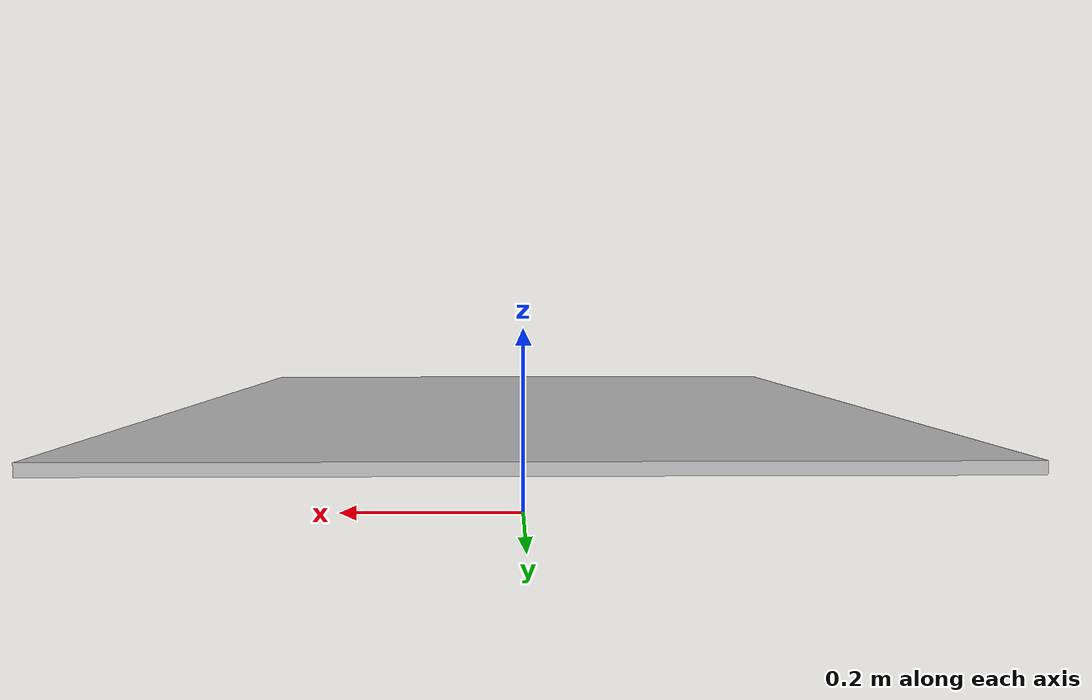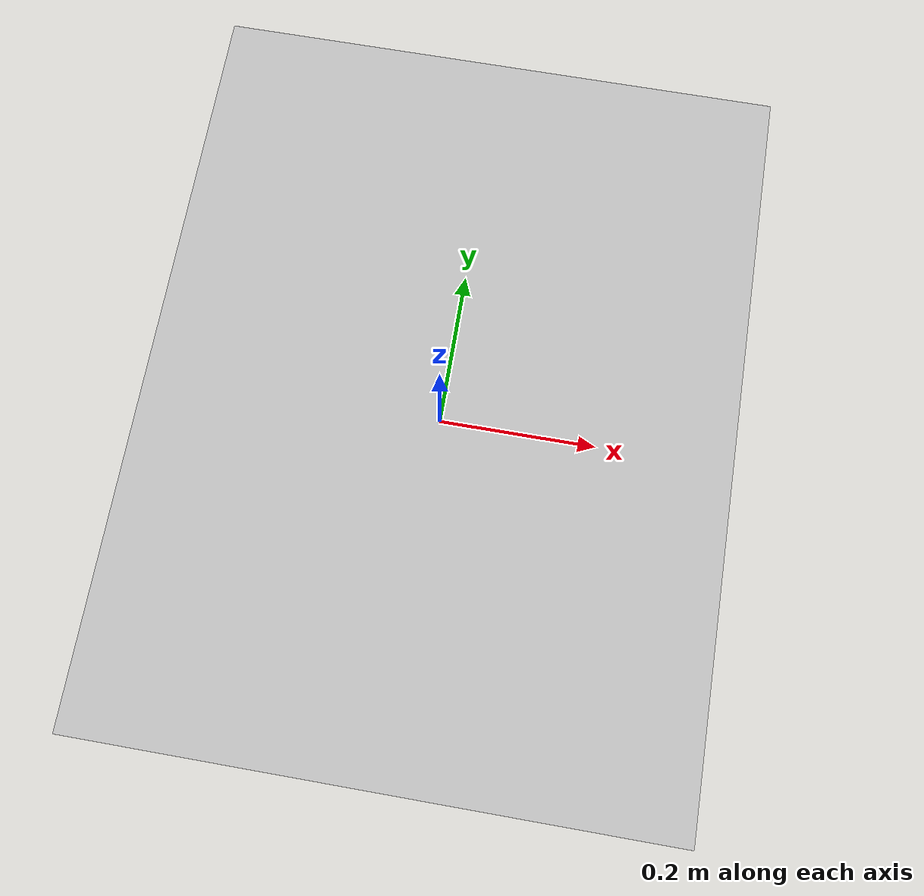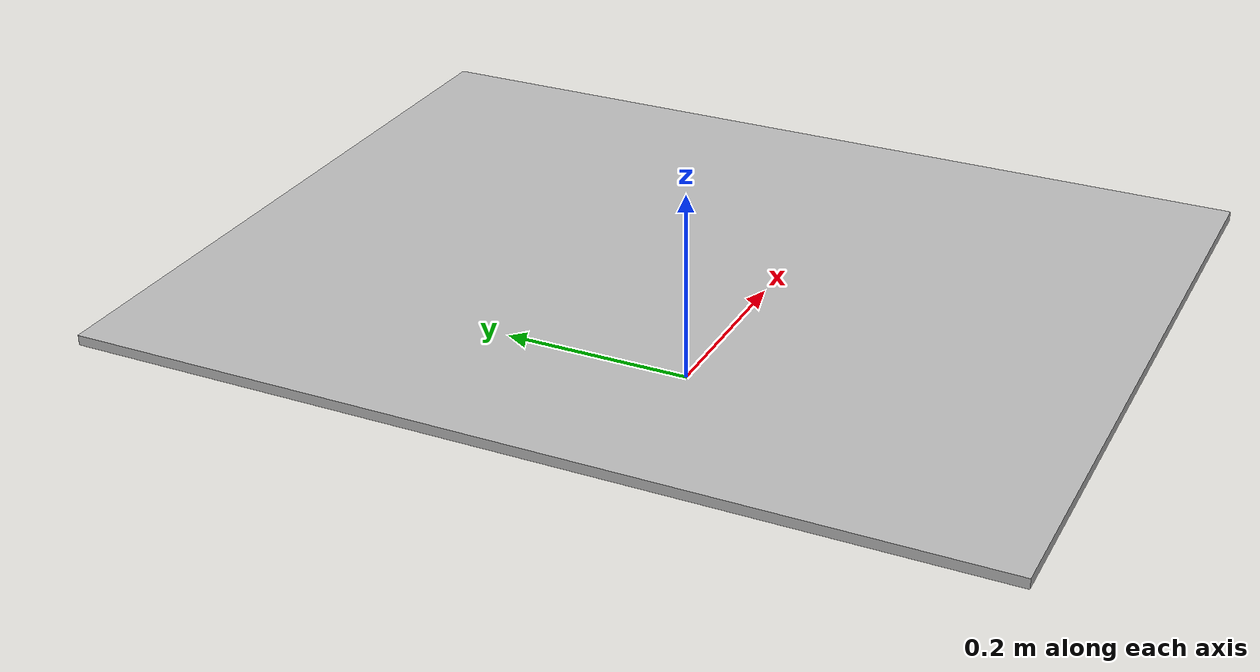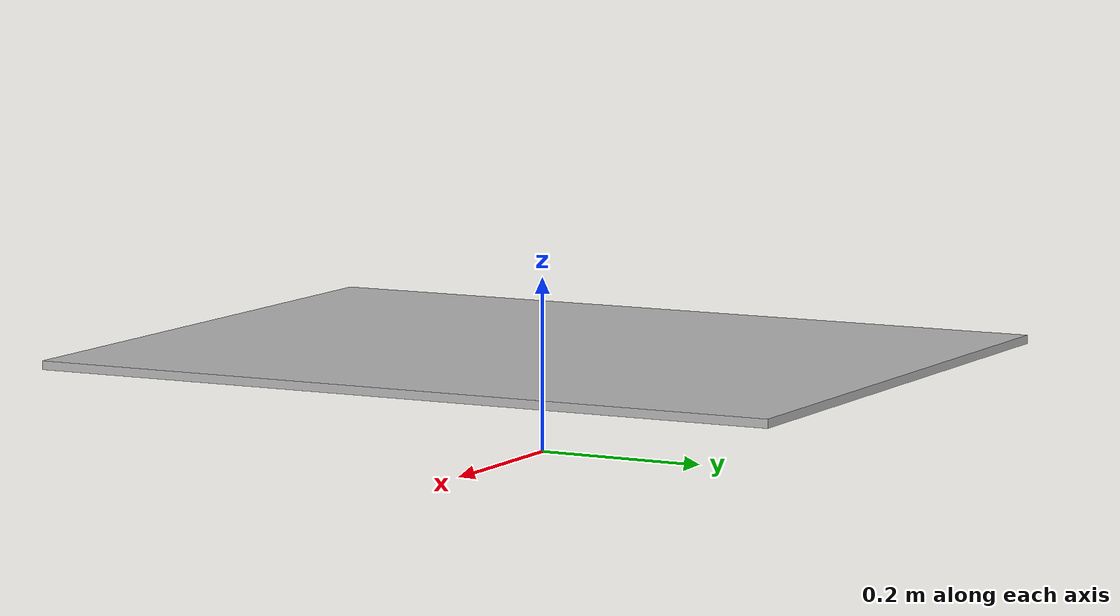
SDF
<?xml version="1.0" encoding="UTF-8"?>
<sdf version="1.4">
	<model name="pattern">
    	<static>true</static>
    	<link name="link">
			<pose>0 0 0.115 0 0 0</pose>
    		<inertial>
        		<mass>0.390</mass>
        		<inertia>
          			<ixx>0.00058</ixx>
          			<ixy>0</ixy>
          			<ixz>0</ixz>
          			<iyy>0.00058</iyy>
          			<iyz>0</iyz>
          			<izz>0.00019</izz>
        		</inertia>
			</inertial>

        	<collision name='collision'>
        		<geometry>
                	<box>
                  		<size>.7 .9 .01</size>
                	</box>
        		</geometry>
      		</collision>

         	<visual name="visual">
            	<cast_shadows>false</cast_shadows>
            	<geometry>
               		<box>
                		<size>.7 .9 .01</size>
                	</box>
            	</geometry>
            	<material>
               		<script>
                		<uri>model://pattern/materials/scripts</uri>
                		<uri>model://pattern/materials/textures/</uri>
                		<name>Pattern/Image</name>
               		</script>
            	</material>
        	</visual>
      	</link>
   </model>
</sdf>
